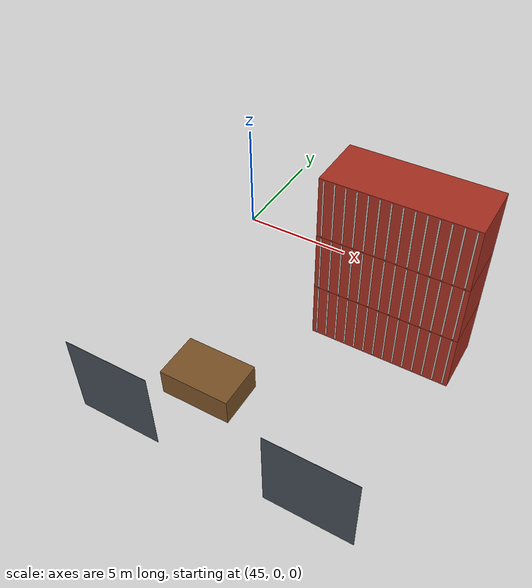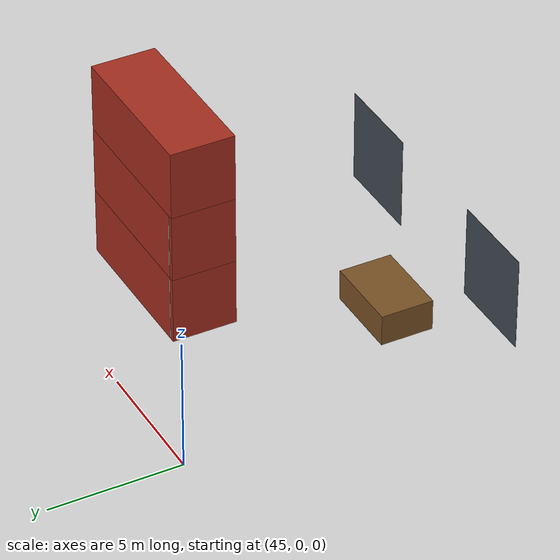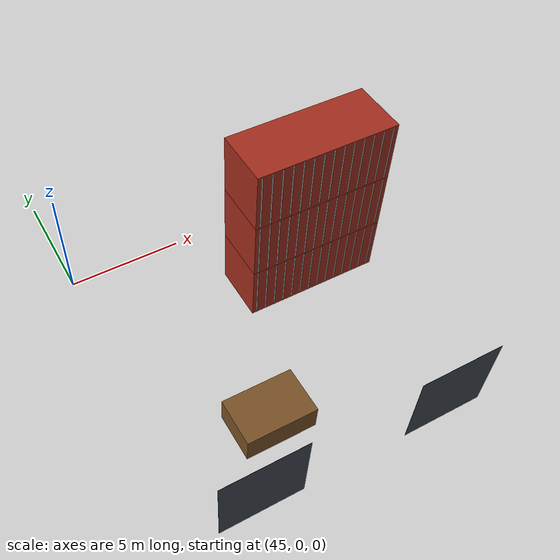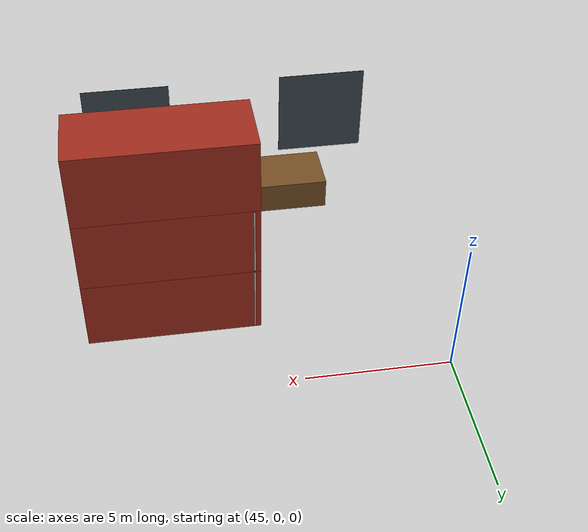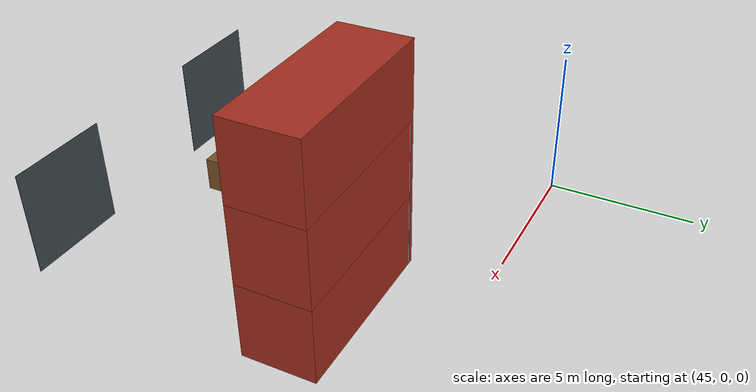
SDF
<sdf version="1.9">
 <world name="iris_mppi_yard_runup60">
  <model name="south_loading_door_2">
   <static>true</static>
   <pose>47.1 -12.895 1.8 0.0 0.0 0.0</pose>
   <link name="body">
    <visual name="visual">
     <geometry><box><size>3.5 0.01 3.6</size></box></geometry>
     <material><ambient>.25 .29 .32 1</ambient><diffuse>.25 .29 .32 1</diffuse></material>
    </visual>
   </link>
  </model>
  <model name="south_loading_door_10">
   <static>true</static>
   <pose>55.1 -12.895 1.8 0.0 0.0 0.0</pose>
   <link name="body">
    <visual name="visual">
     <geometry><box><size>3.5 0.01 3.6</size></box></geometry>
     <material><ambient>.25 .29 .32 1</ambient><diffuse>.25 .29 .32 1</diffuse></material>
    </visual>
   </link>
  </model>
  <model name="container_0_0">
   <static>true</static>
   <pose>54.1 -3.9 1.3 0.0 0.0 0.0</pose>
   <link name="body">
    <collision name="collision"><geometry><box><size>6 2.44 2.6</size></box></geometry></collision>
    <visual name="visual">
     <geometry><box><size>6 2.44 2.6</size></box></geometry>
     <material><ambient>.65 .18 .12 1</ambient><diffuse>.65 .18 .12 1</diffuse></material>
    </visual>
   </link>
  </model>
  <model name="rib_0_0_0_-1">
   <static>true</static>
   <pose>51.300000000000004 -5.118 1.3 0.0 0.0 0.0</pose>
   <link name="body">
    <visual name="visual">
     <geometry><box><size>0.06 0.008 2.5</size></box></geometry>
     <material><ambient>.75 .75 .72 1</ambient><diffuse>.75 .75 .72 1</diffuse></material>
    </visual>
   </link>
  </model>
  <model name="rib_0_0_0_1">
   <static>true</static>
   <pose>51.300000000000004 -2.682 1.3 0.0 0.0 0.0</pose>
   <link name="body">
    <visual name="visual">
     <geometry><box><size>0.06 0.008 2.5</size></box></geometry>
     <material><ambient>.75 .75 .72 1</ambient><diffuse>.75 .75 .72 1</diffuse></material>
    </visual>
   </link>
  </model>
  <model name="rib_0_0_1_-1">
   <static>true</static>
   <pose>51.730000000000004 -5.118 1.3 0.0 0.0 0.0</pose>
   <link name="body">
    <visual name="visual">
     <geometry><box><size>0.06 0.008 2.5</size></box></geometry>
     <material><ambient>.75 .75 .72 1</ambient><diffuse>.75 .75 .72 1</diffuse></material>
    </visual>
   </link>
  </model>
  <model name="rib_0_0_2_-1">
   <static>true</static>
   <pose>52.160000000000004 -5.118 1.3 0.0 0.0 0.0</pose>
   <link name="body">
    <visual name="visual">
     <geometry><box><size>0.06 0.008 2.5</size></box></geometry>
     <material><ambient>.75 .75 .72 1</ambient><diffuse>.75 .75 .72 1</diffuse></material>
    </visual>
   </link>
  </model>
  <model name="rib_0_0_3_-1">
   <static>true</static>
   <pose>52.59 -5.118 1.3 0.0 0.0 0.0</pose>
   <link name="body">
    <visual name="visual">
     <geometry><box><size>0.06 0.008 2.5</size></box></geometry>
     <material><ambient>.75 .75 .72 1</ambient><diffuse>.75 .75 .72 1</diffuse></material>
    </visual>
   </link>
  </model>
  <model name="rib_0_0_4_-1">
   <static>true</static>
   <pose>53.02 -5.118 1.3 0.0 0.0 0.0</pose>
   <link name="body">
    <visual name="visual">
     <geometry><box><size>0.06 0.008 2.5</size></box></geometry>
     <material><ambient>.75 .75 .72 1</ambient><diffuse>.75 .75 .72 1</diffuse></material>
    </visual>
   </link>
  </model>
  <model name="rib_0_0_5_-1">
   <static>true</static>
   <pose>53.45 -5.118 1.3 0.0 0.0 0.0</pose>
   <link name="body">
    <visual name="visual">
     <geometry><box><size>0.06 0.008 2.5</size></box></geometry>
     <material><ambient>.75 .75 .72 1</ambient><diffuse>.75 .75 .72 1</diffuse></material>
    </visual>
   </link>
  </model>
  <model name="rib_0_0_6_-1">
   <static>true</static>
   <pose>53.88 -5.118 1.3 0.0 0.0 0.0</pose>
   <link name="body">
    <visual name="visual">
     <geometry><box><size>0.06 0.008 2.5</size></box></geometry>
     <material><ambient>.75 .75 .72 1</ambient><diffuse>.75 .75 .72 1</diffuse></material>
    </visual>
   </link>
  </model>
  <model name="rib_0_0_7_-1">
   <static>true</static>
   <pose>54.31 -5.118 1.3 0.0 0.0 0.0</pose>
   <link name="body">
    <visual name="visual">
     <geometry><box><size>0.06 0.008 2.5</size></box></geometry>
     <material><ambient>.75 .75 .72 1</ambient><diffuse>.75 .75 .72 1</diffuse></material>
    </visual>
   </link>
  </model>
  <model name="rib_0_0_8_-1">
   <static>true</static>
   <pose>54.74 -5.118 1.3 0.0 0.0 0.0</pose>
   <link name="body">
    <visual name="visual">
     <geometry><box><size>0.06 0.008 2.5</size></box></geometry>
     <material><ambient>.75 .75 .72 1</ambient><diffuse>.75 .75 .72 1</diffuse></material>
    </visual>
   </link>
  </model>
  <model name="rib_0_0_9_-1">
   <static>true</static>
   <pose>55.17 -5.118 1.3 0.0 0.0 0.0</pose>
   <link name="body">
    <visual name="visual">
     <geometry><box><size>0.06 0.008 2.5</size></box></geometry>
     <material><ambient>.75 .75 .72 1</ambient><diffuse>.75 .75 .72 1</diffuse></material>
    </visual>
   </link>
  </model>
  <model name="rib_0_0_10_-1">
   <static>true</static>
   <pose>55.6 -5.118 1.3 0.0 0.0 0.0</pose>
   <link name="body">
    <visual name="visual">
     <geometry><box><size>0.06 0.008 2.5</size></box></geometry>
     <material><ambient>.75 .75 .72 1</ambient><diffuse>.75 .75 .72 1</diffuse></material>
    </visual>
   </link>
  </model>
  <model name="rib_0_0_11_-1">
   <static>true</static>
   <pose>56.03 -5.118 1.3 0.0 0.0 0.0</pose>
   <link name="body">
    <visual name="visual">
     <geometry><box><size>0.06 0.008 2.5</size></box></geometry>
     <material><ambient>.75 .75 .72 1</ambient><diffuse>.75 .75 .72 1</diffuse></material>
    </visual>
   </link>
  </model>
  <model name="rib_0_0_12_-1">
   <static>true</static>
   <pose>56.46 -5.118 1.3 0.0 0.0 0.0</pose>
   <link name="body">
    <visual name="visual">
     <geometry><box><size>0.06 0.008 2.5</size></box></geometry>
     <material><ambient>.75 .75 .72 1</ambient><diffuse>.75 .75 .72 1</diffuse></material>
    </visual>
   </link>
  </model>
  <model name="rib_0_0_13_-1">
   <static>true</static>
   <pose>56.89 -5.118 1.3 0.0 0.0 0.0</pose>
   <link name="body">
    <visual name="visual">
     <geometry><box><size>0.06 0.008 2.5</size></box></geometry>
     <material><ambient>.75 .75 .72 1</ambient><diffuse>.75 .75 .72 1</diffuse></material>
    </visual>
   </link>
  </model>
  <model name="container_0_1">
   <static>true</static>
   <pose>54.1 -3.9 3.9000000000000004 0.0 0.0 0.0</pose>
   <link name="body">
    <collision name="collision"><geometry><box><size>6 2.44 2.6</size></box></geometry></collision>
    <visual name="visual">
     <geometry><box><size>6 2.44 2.6</size></box></geometry>
     <material><ambient>.65 .18 .12 1</ambient><diffuse>.65 .18 .12 1</diffuse></material>
    </visual>
   </link>
  </model>
  <model name="rib_0_1_0_-1">
   <static>true</static>
   <pose>51.300000000000004 -5.118 3.9000000000000004 0.0 0.0 0.0</pose>
   <link name="body">
    <visual name="visual">
     <geometry><box><size>0.06 0.008 2.5</size></box></geometry>
     <material><ambient>.75 .75 .72 1</ambient><diffuse>.75 .75 .72 1</diffuse></material>
    </visual>
   </link>
  </model>
  <model name="rib_0_1_0_1">
   <static>true</static>
   <pose>51.300000000000004 -2.682 3.9000000000000004 0.0 0.0 0.0</pose>
   <link name="body">
    <visual name="visual">
     <geometry><box><size>0.06 0.008 2.5</size></box></geometry>
     <material><ambient>.75 .75 .72 1</ambient><diffuse>.75 .75 .72 1</diffuse></material>
    </visual>
   </link>
  </model>
  <model name="rib_0_1_1_-1">
   <static>true</static>
   <pose>51.730000000000004 -5.118 3.9000000000000004 0.0 0.0 0.0</pose>
   <link name="body">
    <visual name="visual">
     <geometry><box><size>0.06 0.008 2.5</size></box></geometry>
     <material><ambient>.75 .75 .72 1</ambient><diffuse>.75 .75 .72 1</diffuse></material>
    </visual>
   </link>
  </model>
  <model name="rib_0_1_2_-1">
   <static>true</static>
   <pose>52.160000000000004 -5.118 3.9000000000000004 0.0 0.0 0.0</pose>
   <link name="body">
    <visual name="visual">
     <geometry><box><size>0.06 0.008 2.5</size></box></geometry>
     <material><ambient>.75 .75 .72 1</ambient><diffuse>.75 .75 .72 1</diffuse></material>
    </visual>
   </link>
  </model>
  <model name="rib_0_1_3_-1">
   <static>true</static>
   <pose>52.59 -5.118 3.9000000000000004 0.0 0.0 0.0</pose>
   <link name="body">
    <visual name="visual">
     <geometry><box><size>0.06 0.008 2.5</size></box></geometry>
     <material><ambient>.75 .75 .72 1</ambient><diffuse>.75 .75 .72 1</diffuse></material>
    </visual>
   </link>
  </model>
  <model name="rib_0_1_4_-1">
   <static>true</static>
   <pose>53.02 -5.118 3.9000000000000004 0.0 0.0 0.0</pose>
   <link name="body">
    <visual name="visual">
     <geometry><box><size>0.06 0.008 2.5</size></box></geometry>
     <material><ambient>.75 .75 .72 1</ambient><diffuse>.75 .75 .72 1</diffuse></material>
    </visual>
   </link>
  </model>
  <model name="rib_0_1_5_-1">
   <static>true</static>
   <pose>53.45 -5.118 3.9000000000000004 0.0 0.0 0.0</pose>
   <link name="body">
    <visual name="visual">
     <geometry><box><size>0.06 0.008 2.5</size></box></geometry>
     <material><ambient>.75 .75 .72 1</ambient><diffuse>.75 .75 .72 1</diffuse></material>
    </visual>
   </link>
  </model>
  <model name="rib_0_1_6_-1">
   <static>true</static>
   <pose>53.88 -5.118 3.9000000000000004 0.0 0.0 0.0</pose>
   <link name="body">
    <visual name="visual">
     <geometry><box><size>0.06 0.008 2.5</size></box></geometry>
     <material><ambient>.75 .75 .72 1</ambient><diffuse>.75 .75 .72 1</diffuse></material>
    </visual>
   </link>
  </model>
  <model name="rib_0_1_7_-1">
   <static>true</static>
   <pose>54.31 -5.118 3.9000000000000004 0.0 0.0 0.0</pose>
   <link name="body">
    <visual name="visual">
     <geometry><box><size>0.06 0.008 2.5</size></box></geometry>
     <material><ambient>.75 .75 .72 1</ambient><diffuse>.75 .75 .72 1</diffuse></material>
    </visual>
   </link>
  </model>
  <model name="rib_0_1_8_-1">
   <static>true</static>
   <pose>54.74 -5.118 3.9000000000000004 0.0 0.0 0.0</pose>
   <link name="body">
    <visual name="visual">
     <geometry><box><size>0.06 0.008 2.5</size></box></geometry>
     <material><ambient>.75 .75 .72 1</ambient><diffuse>.75 .75 .72 1</diffuse></material>
    </visual>
   </link>
  </model>
  <model name="rib_0_1_9_-1">
   <static>true</static>
   <pose>55.17 -5.118 3.9000000000000004 0.0 0.0 0.0</pose>
   <link name="body">
    <visual name="visual">
     <geometry><box><size>0.06 0.008 2.5</size></box></geometry>
     <material><ambient>.75 .75 .72 1</ambient><diffuse>.75 .75 .72 1</diffuse></material>
    </visual>
   </link>
  </model>
  <model name="rib_0_1_10_-1">
   <static>true</static>
   <pose>55.6 -5.118 3.9000000000000004 0.0 0.0 0.0</pose>
   <link name="body">
    <visual name="visual">
     <geometry><box><size>0.06 0.008 2.5</size></box></geometry>
     <material><ambient>.75 .75 .72 1</ambient><diffuse>.75 .75 .72 1</diffuse></material>
    </visual>
   </link>
  </model>
  <model name="rib_0_1_11_-1">
   <static>true</static>
   <pose>56.03 -5.118 3.9000000000000004 0.0 0.0 0.0</pose>
   <link name="body">
    <visual name="visual">
     <geometry><box><size>0.06 0.008 2.5</size></box></geometry>
     <material><ambient>.75 .75 .72 1</ambient><diffuse>.75 .75 .72 1</diffuse></material>
    </visual>
   </link>
  </model>
  <model name="rib_0_1_12_-1">
   <static>true</static>
   <pose>56.46 -5.118 3.9000000000000004 0.0 0.0 0.0</pose>
   <link name="body">
    <visual name="visual">
     <geometry><box><size>0.06 0.008 2.5</size></box></geometry>
     <material><ambient>.75 .75 .72 1</ambient><diffuse>.75 .75 .72 1</diffuse></material>
    </visual>
   </link>
  </model>
  <model name="rib_0_1_13_-1">
   <static>true</static>
   <pose>56.89 -5.118 3.9000000000000004 0.0 0.0 0.0</pose>
   <link name="body">
    <visual name="visual">
     <geometry><box><size>0.06 0.008 2.5</size></box></geometry>
     <material><ambient>.75 .75 .72 1</ambient><diffuse>.75 .75 .72 1</diffuse></material>
    </visual>
   </link>
  </model>
  <model name="container_0_2">
   <static>true</static>
   <pose>54.1 -3.9 6.5 0.0 0.0 0.0</pose>
   <link name="body">
    <collision name="collision"><geometry><box><size>6 2.44 2.6</size></box></geometry></collision>
    <visual name="visual">
     <geometry><box><size>6 2.44 2.6</size></box></geometry>
     <material><ambient>.65 .18 .12 1</ambient><diffuse>.65 .18 .12 1</diffuse></material>
    </visual>
   </link>
  </model>
  <model name="rib_0_2_0_-1">
   <static>true</static>
   <pose>51.300000000000004 -5.118 6.5 0.0 0.0 0.0</pose>
   <link name="body">
    <visual name="visual">
     <geometry><box><size>0.06 0.008 2.5</size></box></geometry>
     <material><ambient>.75 .75 .72 1</ambient><diffuse>.75 .75 .72 1</diffuse></material>
    </visual>
   </link>
  </model>
  <model name="rib_0_2_1_-1">
   <static>true</static>
   <pose>51.730000000000004 -5.118 6.5 0.0 0.0 0.0</pose>
   <link name="body">
    <visual name="visual">
     <geometry><box><size>0.06 0.008 2.5</size></box></geometry>
     <material><ambient>.75 .75 .72 1</ambient><diffuse>.75 .75 .72 1</diffuse></material>
    </visual>
   </link>
  </model>
  <model name="rib_0_2_2_-1">
   <static>true</static>
   <pose>52.160000000000004 -5.118 6.5 0.0 0.0 0.0</pose>
   <link name="body">
    <visual name="visual">
     <geometry><box><size>0.06 0.008 2.5</size></box></geometry>
     <material><ambient>.75 .75 .72 1</ambient><diffuse>.75 .75 .72 1</diffuse></material>
    </visual>
   </link>
  </model>
  <model name="rib_0_2_3_-1">
   <static>true</static>
   <pose>52.59 -5.118 6.5 0.0 0.0 0.0</pose>
   <link name="body">
    <visual name="visual">
     <geometry><box><size>0.06 0.008 2.5</size></box></geometry>
     <material><ambient>.75 .75 .72 1</ambient><diffuse>.75 .75 .72 1</diffuse></material>
    </visual>
   </link>
  </model>
  <model name="rib_0_2_4_-1">
   <static>true</static>
   <pose>53.02 -5.118 6.5 0.0 0.0 0.0</pose>
   <link name="body">
    <visual name="visual">
     <geometry><box><size>0.06 0.008 2.5</size></box></geometry>
     <material><ambient>.75 .75 .72 1</ambient><diffuse>.75 .75 .72 1</diffuse></material>
    </visual>
   </link>
  </model>
  <model name="rib_0_2_5_-1">
   <static>true</static>
   <pose>53.45 -5.118 6.5 0.0 0.0 0.0</pose>
   <link name="body">
    <visual name="visual">
     <geometry><box><size>0.06 0.008 2.5</size></box></geometry>
     <material><ambient>.75 .75 .72 1</ambient><diffuse>.75 .75 .72 1</diffuse></material>
    </visual>
   </link>
  </model>
  <model name="rib_0_2_6_-1">
   <static>true</static>
   <pose>53.88 -5.118 6.5 0.0 0.0 0.0</pose>
   <link name="body">
    <visual name="visual">
     <geometry><box><size>0.06 0.008 2.5</size></box></geometry>
     <material><ambient>.75 .75 .72 1</ambient><diffuse>.75 .75 .72 1</diffuse></material>
    </visual>
   </link>
  </model>
  <model name="rib_0_2_7_-1">
   <static>true</static>
   <pose>54.31 -5.118 6.5 0.0 0.0 0.0</pose>
   <link name="body">
    <visual name="visual">
     <geometry><box><size>0.06 0.008 2.5</size></box></geometry>
     <material><ambient>.75 .75 .72 1</ambient><diffuse>.75 .75 .72 1</diffuse></material>
    </visual>
   </link>
  </model>
  <model name="rib_0_2_8_-1">
   <static>true</static>
   <pose>54.74 -5.118 6.5 0.0 0.0 0.0</pose>
   <link name="body">
    <visual name="visual">
     <geometry><box><size>0.06 0.008 2.5</size></box></geometry>
     <material><ambient>.75 .75 .72 1</ambient><diffuse>.75 .75 .72 1</diffuse></material>
    </visual>
   </link>
  </model>
  <model name="rib_0_2_9_-1">
   <static>true</static>
   <pose>55.17 -5.118 6.5 0.0 0.0 0.0</pose>
   <link name="body">
    <visual name="visual">
     <geometry><box><size>0.06 0.008 2.5</size></box></geometry>
     <material><ambient>.75 .75 .72 1</ambient><diffuse>.75 .75 .72 1</diffuse></material>
    </visual>
   </link>
  </model>
  <model name="rib_0_2_10_-1">
   <static>true</static>
   <pose>55.6 -5.118 6.5 0.0 0.0 0.0</pose>
   <link name="body">
    <visual name="visual">
     <geometry><box><size>0.06 0.008 2.5</size></box></geometry>
     <material><ambient>.75 .75 .72 1</ambient><diffuse>.75 .75 .72 1</diffuse></material>
    </visual>
   </link>
  </model>
  <model name="rib_0_2_11_-1">
   <static>true</static>
   <pose>56.03 -5.118 6.5 0.0 0.0 0.0</pose>
   <link name="body">
    <visual name="visual">
     <geometry><box><size>0.06 0.008 2.5</size></box></geometry>
     <material><ambient>.75 .75 .72 1</ambient><diffuse>.75 .75 .72 1</diffuse></material>
    </visual>
   </link>
  </model>
  <model name="rib_0_2_12_-1">
   <static>true</static>
   <pose>56.46 -5.118 6.5 0.0 0.0 0.0</pose>
   <link name="body">
    <visual name="visual">
     <geometry><box><size>0.06 0.008 2.5</size></box></geometry>
     <material><ambient>.75 .75 .72 1</ambient><diffuse>.75 .75 .72 1</diffuse></material>
    </visual>
   </link>
  </model>
  <model name="rib_0_2_13_-1">
   <static>true</static>
   <pose>56.89 -5.118 6.5 0.0 0.0 0.0</pose>
   <link name="body">
    <visual name="visual">
     <geometry><box><size>0.06 0.008 2.5</size></box></geometry>
     <material><ambient>.75 .75 .72 1</ambient><diffuse>.75 .75 .72 1</diffuse></material>
    </visual>
   </link>
  </model>
  <model name="loading_pallets">
   <static>true</static>
   <pose>49.1 -9.9 0.6 0.0 0.0 0.0</pose>
   <link name="body">
    <collision name="collision"><geometry><box><size>3 2 1.2</size></box></geometry></collision>
    <visual name="visual">
     <geometry><box><size>3 2 1.2</size></box></geometry>
     <material><ambient>.48 .32 .15 1</ambient><diffuse>.48 .32 .15 1</diffuse></material>
    </visual>
   </link>
  </model>
 </world>
</sdf>
